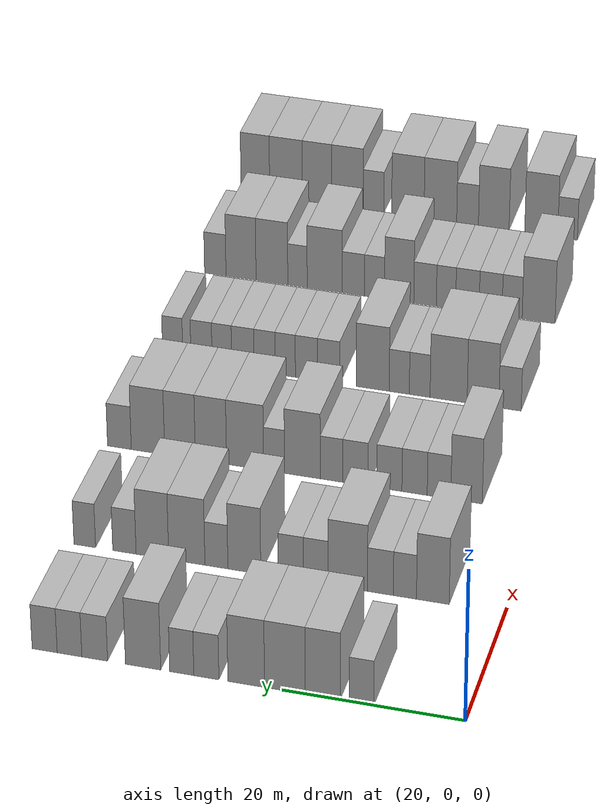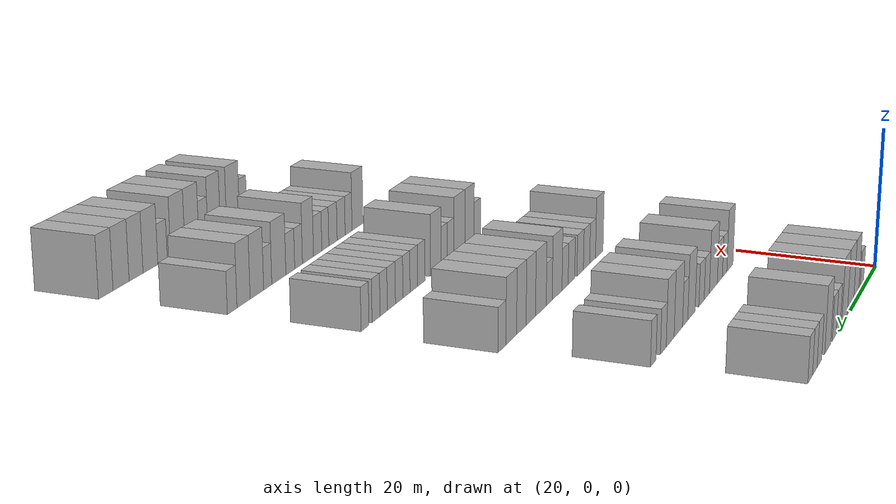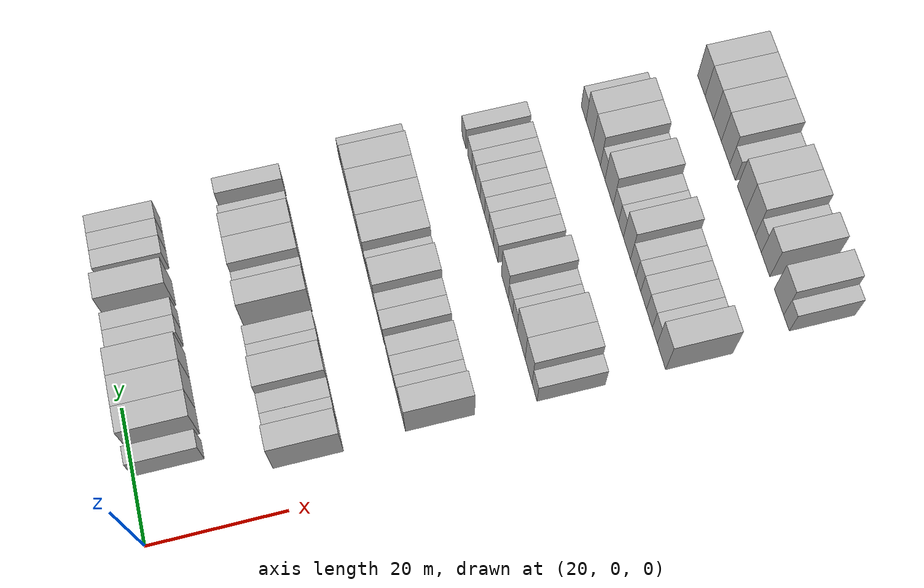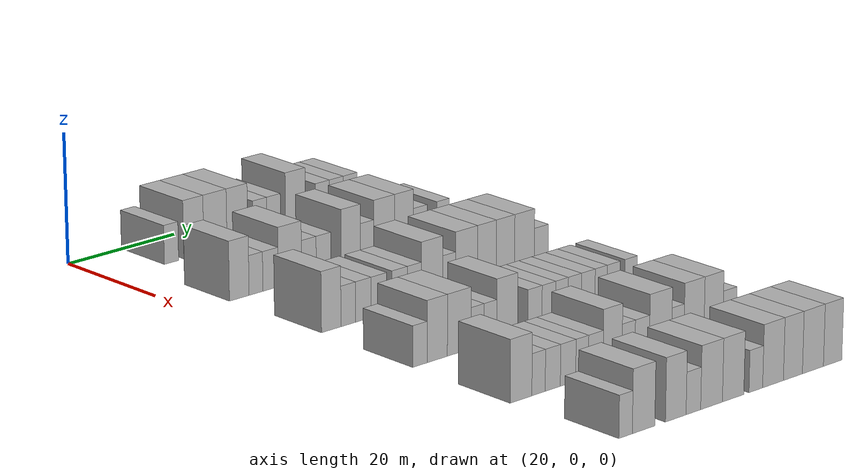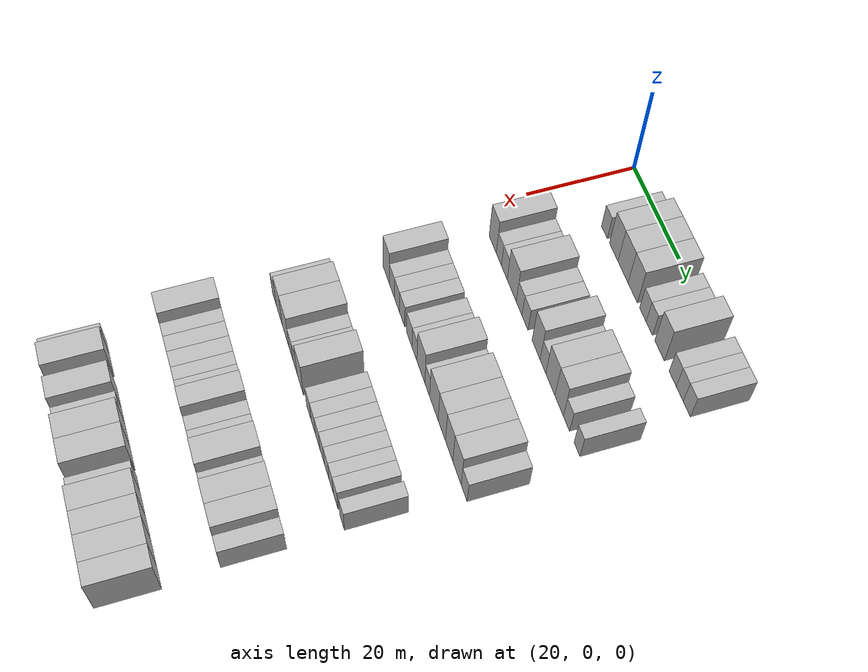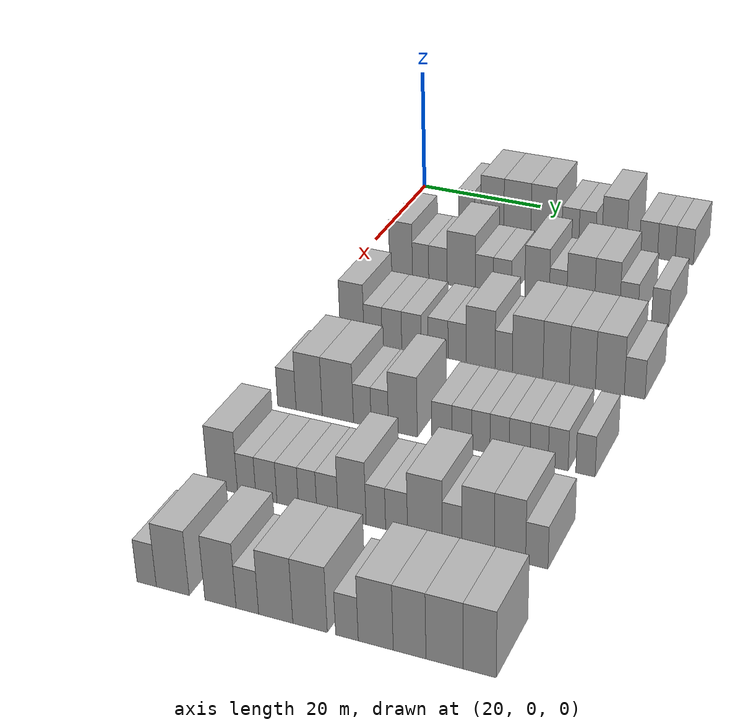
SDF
<sdf version="1.6">
 <world name="default">
  <model name="building_86">
   <static>1</static>
   <pose>25.0000 11.2939 0 0.000000 0.000000 0.000000</pose>
   <link name="link">
    <pose>0 0 3.00 0 0 0</pose>
    <collision name="collision"><geometry><box><size>10.0000 2.6943 6.0000</size></box></geometry></collision>
    <visual name="visual">
     <cast_shadows>0</cast_shadows>
     <geometry><box><size>10.0000 2.6943 6.0000</size></box></geometry>
     <material>
      <script>
       <uri>model://HANNAS_wall/materials/scripts</uri>
       <uri>model://HANNAS_wall/materials/textures</uri>
       <name>vrc/HANNAS_wall</name>
      </script>
     </material>
    </visual>
   </link>
  </model>
  <model name="building_87">
   <static>1</static>
   <pose>25.0000 15.5551 0 0.000000 0.000000 0.000000</pose>
   <link name="link">
    <pose>0 0 4.50 0 0 0</pose>
    <collision name="collision"><geometry><box><size>10.0000 3.8279 9.0000</size></box></geometry></collision>
    <visual name="visual">
     <cast_shadows>0</cast_shadows>
     <geometry><box><size>10.0000 3.8279 9.0000</size></box></geometry>
     <material>
      <script>
       <uri>model://HANNAS_wall/materials/scripts</uri>
       <uri>model://HANNAS_wall/materials/textures</uri>
       <name>vrc/HANNAS_wall</name>
      </script>
     </material>
    </visual>
   </link>
  </model>
  <model name="building_88">
   <static>1</static>
   <pose>25.0000 19.7110 0 0.000000 0.000000 0.000000</pose>
   <link name="link">
    <pose>0 0 4.50 0 0 0</pose>
    <collision name="collision"><geometry><box><size>10.0000 4.4839 9.0000</size></box></geometry></collision>
    <visual name="visual">
     <cast_shadows>0</cast_shadows>
     <geometry><box><size>10.0000 4.4839 9.0000</size></box></geometry>
     <material>
      <script>
       <uri>model://HANNAS_wall/materials/scripts</uri>
       <uri>model://HANNAS_wall/materials/textures</uri>
       <name>vrc/HANNAS_wall</name>
      </script>
     </material>
    </visual>
   </link>
  </model>
  <model name="building_89">
   <static>1</static>
   <pose>25.0000 23.9809 0 0.000000 0.000000 0.000000</pose>
   <link name="link">
    <pose>0 0 4.50 0 0 0</pose>
    <collision name="collision"><geometry><box><size>10.0000 4.0560 9.0000</size></box></geometry></collision>
    <visual name="visual">
     <cast_shadows>0</cast_shadows>
     <geometry><box><size>10.0000 4.0560 9.0000</size></box></geometry>
     <material>
      <script>
       <uri>model://HANNAS_wall/materials/scripts</uri>
       <uri>model://HANNAS_wall/materials/textures</uri>
       <name>vrc/HANNAS_wall</name>
      </script>
     </material>
    </visual>
   </link>
  </model>
  <model name="building_90">
   <static>1</static>
   <pose>25.0000 28.4050 0 0.000000 0.000000 0.000000</pose>
   <link name="link">
    <pose>0 0 3.00 0 0 0</pose>
    <collision name="collision"><geometry><box><size>10.0000 2.7922 6.0000</size></box></geometry></collision>
    <visual name="visual">
     <cast_shadows>0</cast_shadows>
     <geometry><box><size>10.0000 2.7922 6.0000</size></box></geometry>
     <material>
      <script>
       <uri>model://HANNAS_wall/materials/scripts</uri>
       <uri>model://HANNAS_wall/materials/textures</uri>
       <name>vrc/HANNAS_wall</name>
      </script>
     </material>
    </visual>
   </link>
  </model>
  <model name="building_91">
   <static>1</static>
   <pose>25.0000 31.1441 0 0.000000 0.000000 0.000000</pose>
   <link name="link">
    <pose>0 0 3.00 0 0 0</pose>
    <collision name="collision"><geometry><box><size>10.0000 2.6859 6.0000</size></box></geometry></collision>
    <visual name="visual">
     <cast_shadows>0</cast_shadows>
     <geometry><box><size>10.0000 2.6859 6.0000</size></box></geometry>
     <material>
      <script>
       <uri>model://HANNAS_wall/materials/scripts</uri>
       <uri>model://HANNAS_wall/materials/textures</uri>
       <name>vrc/HANNAS_wall</name>
      </script>
     </material>
    </visual>
   </link>
  </model>
  <model name="building_92">
   <static>1</static>
   <pose>25.0000 35.4625 0 0.000000 0.000000 0.000000</pose>
   <link name="link">
    <pose>0 0 4.50 0 0 0</pose>
    <collision name="collision"><geometry><box><size>10.0000 3.9509 9.0000</size></box></geometry></collision>
    <visual name="visual">
     <cast_shadows>0</cast_shadows>
     <geometry><box><size>10.0000 3.9509 9.0000</size></box></geometry>
     <material>
      <script>
       <uri>model://HANNAS_wall/materials/scripts</uri>
       <uri>model://HANNAS_wall/materials/textures</uri>
       <name>vrc/HANNAS_wall</name>
      </script>
     </material>
    </visual>
   </link>
  </model>
  <model name="building_93">
   <static>1</static>
   <pose>25.0000 40.8874 0 0.000000 0.000000 0.000000</pose>
   <link name="link">
    <pose>0 0 3.00 0 0 0</pose>
    <collision name="collision"><geometry><box><size>10.0000 2.8988 6.0000</size></box></geometry></collision>
    <visual name="visual">
     <cast_shadows>0</cast_shadows>
     <geometry><box><size>10.0000 2.8988 6.0000</size></box></geometry>
     <material>
      <script>
       <uri>model://HANNAS_wall/materials/scripts</uri>
       <uri>model://HANNAS_wall/materials/textures</uri>
       <name>vrc/HANNAS_wall</name>
      </script>
     </material>
    </visual>
   </link>
  </model>
  <model name="building_94">
   <static>1</static>
   <pose>25.0000 43.7271 0 0.000000 0.000000 0.000000</pose>
   <link name="link">
    <pose>0 0 3.00 0 0 0</pose>
    <collision name="collision"><geometry><box><size>10.0000 2.7806 6.0000</size></box></geometry></collision>
    <visual name="visual">
     <cast_shadows>0</cast_shadows>
     <geometry><box><size>10.0000 2.7806 6.0000</size></box></geometry>
     <material>
      <script>
       <uri>model://HANNAS_wall/materials/scripts</uri>
       <uri>model://HANNAS_wall/materials/textures</uri>
       <name>vrc/HANNAS_wall</name>
      </script>
     </material>
    </visual>
   </link>
  </model>
  <model name="building_95">
   <static>1</static>
   <pose>25.0000 46.5341 0 0.000000 0.000000 0.000000</pose>
   <link name="link">
    <pose>0 0 3.00 0 0 0</pose>
    <collision name="collision"><geometry><box><size>10.0000 2.8335 6.0000</size></box></geometry></collision>
    <visual name="visual">
     <cast_shadows>0</cast_shadows>
     <geometry><box><size>10.0000 2.8335 6.0000</size></box></geometry>
     <material>
      <script>
       <uri>model://HANNAS_wall/materials/scripts</uri>
       <uri>model://HANNAS_wall/materials/textures</uri>
       <name>vrc/HANNAS_wall</name>
      </script>
     </material>
    </visual>
   </link>
  </model>
  <model name="building_270">
   <static>1</static>
   <pose>44.0000 8.1448 0 0.000000 0.000000 0.000000</pose>
   <link name="link">
    <pose>0 0 4.50 0 0 0</pose>
    <collision name="collision"><geometry><box><size>10.0000 3.6847 9.0000</size></box></geometry></collision>
    <visual name="visual">
     <cast_shadows>0</cast_shadows>
     <geometry><box><size>10.0000 3.6847 9.0000</size></box></geometry>
     <material>
      <script>
       <uri>model://HANNAS_wall/materials/scripts</uri>
       <uri>model://HANNAS_wall/materials/textures</uri>
       <name>vrc/HANNAS_wall</name>
      </script>
     </material>
    </visual>
   </link>
  </model>
  <model name="building_271">
   <static>1</static>
   <pose>44.0000 11.2931 0 0.000000 0.000000 0.000000</pose>
   <link name="link">
    <pose>0 0 3.00 0 0 0</pose>
    <collision name="collision"><geometry><box><size>10.0000 2.6119 6.0000</size></box></geometry></collision>
    <visual name="visual">
     <cast_shadows>0</cast_shadows>
     <geometry><box><size>10.0000 2.6119 6.0000</size></box></geometry>
     <material>
      <script>
       <uri>model://HANNAS_wall/materials/scripts</uri>
       <uri>model://HANNAS_wall/materials/textures</uri>
       <name>vrc/HANNAS_wall</name>
      </script>
     </material>
    </visual>
   </link>
  </model>
  <model name="building_272">
   <static>1</static>
   <pose>44.0000 14.0636 0 0.000000 0.000000 0.000000</pose>
   <link name="link">
    <pose>0 0 3.00 0 0 0</pose>
    <collision name="collision"><geometry><box><size>10.0000 2.9292 6.0000</size></box></geometry></collision>
    <visual name="visual">
     <cast_shadows>0</cast_shadows>
     <geometry><box><size>10.0000 2.9292 6.0000</size></box></geometry>
     <material>
      <script>
       <uri>model://HANNAS_wall/materials/scripts</uri>
       <uri>model://HANNAS_wall/materials/textures</uri>
       <name>vrc/HANNAS_wall</name>
      </script>
     </material>
    </visual>
   </link>
  </model>
  <model name="building_273">
   <static>1</static>
   <pose>44.0000 17.7617 0 0.000000 0.000000 0.000000</pose>
   <link name="link">
    <pose>0 0 4.50 0 0 0</pose>
    <collision name="collision"><geometry><box><size>10.0000 4.4670 9.0000</size></box></geometry></collision>
    <visual name="visual">
     <cast_shadows>0</cast_shadows>
     <geometry><box><size>10.0000 4.4670 9.0000</size></box></geometry>
     <material>
      <script>
       <uri>model://HANNAS_wall/materials/scripts</uri>
       <uri>model://HANNAS_wall/materials/textures</uri>
       <name>vrc/HANNAS_wall</name>
      </script>
     </material>
    </visual>
   </link>
  </model>
  <model name="building_274">
   <static>1</static>
   <pose>44.0000 21.4152 0 0.000000 0.000000 0.000000</pose>
   <link name="link">
    <pose>0 0 3.00 0 0 0</pose>
    <collision name="collision"><geometry><box><size>10.0000 2.8399 6.0000</size></box></geometry></collision>
    <visual name="visual">
     <cast_shadows>0</cast_shadows>
     <geometry><box><size>10.0000 2.8399 6.0000</size></box></geometry>
     <material>
      <script>
       <uri>model://HANNAS_wall/materials/scripts</uri>
       <uri>model://HANNAS_wall/materials/textures</uri>
       <name>vrc/HANNAS_wall</name>
      </script>
     </material>
    </visual>
   </link>
  </model>
  <model name="building_275">
   <static>1</static>
   <pose>44.0000 24.2639 0 0.000000 0.000000 0.000000</pose>
   <link name="link">
    <pose>0 0 3.00 0 0 0</pose>
    <collision name="collision"><geometry><box><size>10.0000 2.8575 6.0000</size></box></geometry></collision>
    <visual name="visual">
     <cast_shadows>0</cast_shadows>
     <geometry><box><size>10.0000 2.8575 6.0000</size></box></geometry>
     <material>
      <script>
       <uri>model://HANNAS_wall/materials/scripts</uri>
       <uri>model://HANNAS_wall/materials/textures</uri>
       <name>vrc/HANNAS_wall</name>
      </script>
     </material>
    </visual>
   </link>
  </model>
  <model name="building_276">
   <static>1</static>
   <pose>44.0000 29.5811 0 0.000000 0.000000 0.000000</pose>
   <link name="link">
    <pose>0 0 4.50 0 0 0</pose>
    <collision name="collision"><geometry><box><size>10.0000 3.7770 9.0000</size></box></geometry></collision>
    <visual name="visual">
     <cast_shadows>0</cast_shadows>
     <geometry><box><size>10.0000 3.7770 9.0000</size></box></geometry>
     <material>
      <script>
       <uri>model://HANNAS_wall/materials/scripts</uri>
       <uri>model://HANNAS_wall/materials/textures</uri>
       <name>vrc/HANNAS_wall</name>
      </script>
     </material>
    </visual>
   </link>
  </model>
  <model name="building_277">
   <static>1</static>
   <pose>44.0000 32.7936 0 0.000000 0.000000 0.000000</pose>
   <link name="link">
    <pose>0 0 3.00 0 0 0</pose>
    <collision name="collision"><geometry><box><size>10.0000 2.6480 6.0000</size></box></geometry></collision>
    <visual name="visual">
     <cast_shadows>0</cast_shadows>
     <geometry><box><size>10.0000 2.6480 6.0000</size></box></geometry>
     <material>
      <script>
       <uri>model://HANNAS_wall/materials/scripts</uri>
       <uri>model://HANNAS_wall/materials/textures</uri>
       <name>vrc/HANNAS_wall</name>
      </script>
     </material>
    </visual>
   </link>
  </model>
  <model name="building_278">
   <static>1</static>
   <pose>44.0000 36.2102 0 0.000000 0.000000 0.000000</pose>
   <link name="link">
    <pose>0 0 4.50 0 0 0</pose>
    <collision name="collision"><geometry><box><size>10.0000 4.1853 9.0000</size></box></geometry></collision>
    <visual name="visual">
     <cast_shadows>0</cast_shadows>
     <geometry><box><size>10.0000 4.1853 9.0000</size></box></geometry>
     <material>
      <script>
       <uri>model://HANNAS_wall/materials/scripts</uri>
       <uri>model://HANNAS_wall/materials/textures</uri>
       <name>vrc/HANNAS_wall</name>
      </script>
     </material>
    </visual>
   </link>
  </model>
  <model name="building_279">
   <static>1</static>
   <pose>44.0000 40.1960 0 0.000000 0.000000 0.000000</pose>
   <link name="link">
    <pose>0 0 4.50 0 0 0</pose>
    <collision name="collision"><geometry><box><size>10.0000 3.7861 9.0000</size></box></geometry></collision>
    <visual name="visual">
     <cast_shadows>0</cast_shadows>
     <geometry><box><size>10.0000 3.7861 9.0000</size></box></geometry>
     <material>
      <script>
       <uri>model://HANNAS_wall/materials/scripts</uri>
       <uri>model://HANNAS_wall/materials/textures</uri>
       <name>vrc/HANNAS_wall</name>
      </script>
     </material>
    </visual>
   </link>
  </model>
  <model name="building_280">
   <static>1</static>
   <pose>44.0000 43.4477 0 0.000000 0.000000 0.000000</pose>
   <link name="link">
    <pose>0 0 3.00 0 0 0</pose>
    <collision name="collision"><geometry><box><size>10.0000 2.7173 6.0000</size></box></geometry></collision>
    <visual name="visual">
     <cast_shadows>0</cast_shadows>
     <geometry><box><size>10.0000 2.7173 6.0000</size></box></geometry>
     <material>
      <script>
       <uri>model://HANNAS_wall/materials/scripts</uri>
       <uri>model://HANNAS_wall/materials/textures</uri>
       <name>vrc/HANNAS_wall</name>
      </script>
     </material>
    </visual>
   </link>
  </model>
  <model name="building_281">
   <static>1</static>
   <pose>44.0000 48.0725 0 0.000000 0.000000 0.000000</pose>
   <link name="link">
    <pose>0 0 3.00 0 0 0</pose>
    <collision name="collision"><geometry><box><size>10.0000 2.5323 6.0000</size></box></geometry></collision>
    <visual name="visual">
     <cast_shadows>0</cast_shadows>
     <geometry><box><size>10.0000 2.5323 6.0000</size></box></geometry>
     <material>
      <script>
       <uri>model://HANNAS_wall/materials/scripts</uri>
       <uri>model://HANNAS_wall/materials/textures</uri>
       <name>vrc/HANNAS_wall</name>
      </script>
     </material>
    </visual>
   </link>
  </model>
  <model name="building_431">
   <static>1</static>
   <pose>63.0000 8.8185 0 0.000000 0.000000 0.000000</pose>
   <link name="link">
    <pose>0 0 4.50 0 0 0</pose>
    <collision name="collision"><geometry><box><size>10.0000 3.6568 9.0000</size></box></geometry></collision>
    <visual name="visual">
     <cast_shadows>0</cast_shadows>
     <geometry><box><size>10.0000 3.6568 9.0000</size></box></geometry>
     <material>
      <script>
       <uri>model://HANNAS_wall/materials/scripts</uri>
       <uri>model://HANNAS_wall/materials/textures</uri>
       <name>vrc/HANNAS_wall</name>
      </script>
     </material>
    </visual>
   </link>
  </model>
  <model name="building_432">
   <static>1</static>
   <pose>63.0000 12.0257 0 0.000000 0.000000 0.000000</pose>
   <link name="link">
    <pose>0 0 3.00 0 0 0</pose>
    <collision name="collision"><geometry><box><size>10.0000 2.7575 6.0000</size></box></geometry></collision>
    <visual name="visual">
     <cast_shadows>0</cast_shadows>
     <geometry><box><size>10.0000 2.7575 6.0000</size></box></geometry>
     <material>
      <script>
       <uri>model://HANNAS_wall/materials/scripts</uri>
       <uri>model://HANNAS_wall/materials/textures</uri>
       <name>vrc/HANNAS_wall</name>
      </script>
     </material>
    </visual>
   </link>
  </model>
  <model name="building_433">
   <static>1</static>
   <pose>63.0000 14.8827 0 0.000000 0.000000 0.000000</pose>
   <link name="link">
    <pose>0 0 3.00 0 0 0</pose>
    <collision name="collision"><geometry><box><size>10.0000 2.9565 6.0000</size></box></geometry></collision>
    <visual name="visual">
     <cast_shadows>0</cast_shadows>
     <geometry><box><size>10.0000 2.9565 6.0000</size></box></geometry>
     <material>
      <script>
       <uri>model://HANNAS_wall/materials/scripts</uri>
       <uri>model://HANNAS_wall/materials/textures</uri>
       <name>vrc/HANNAS_wall</name>
      </script>
     </material>
    </visual>
   </link>
  </model>
  <model name="building_434">
   <static>1</static>
   <pose>63.0000 17.8449 0 0.000000 0.000000 0.000000</pose>
   <link name="link">
    <pose>0 0 3.00 0 0 0</pose>
    <collision name="collision"><geometry><box><size>10.0000 2.9678 6.0000</size></box></geometry></collision>
    <visual name="visual">
     <cast_shadows>0</cast_shadows>
     <geometry><box><size>10.0000 2.9678 6.0000</size></box></geometry>
     <material>
      <script>
       <uri>model://HANNAS_wall/materials/scripts</uri>
       <uri>model://HANNAS_wall/materials/textures</uri>
       <name>vrc/HANNAS_wall</name>
      </script>
     </material>
    </visual>
   </link>
  </model>
  <model name="building_435">
   <static>1</static>
   <pose>63.0000 21.8073 0 0.000000 0.000000 0.000000</pose>
   <link name="link">
    <pose>0 0 3.00 0 0 0</pose>
    <collision name="collision"><geometry><box><size>10.0000 2.9570 6.0000</size></box></geometry></collision>
    <visual name="visual">
     <cast_shadows>0</cast_shadows>
     <geometry><box><size>10.0000 2.9570 6.0000</size></box></geometry>
     <material>
      <script>
       <uri>model://HANNAS_wall/materials/scripts</uri>
       <uri>model://HANNAS_wall/materials/textures</uri>
       <name>vrc/HANNAS_wall</name>
      </script>
     </material>
    </visual>
   </link>
  </model>
  <model name="building_436">
   <static>1</static>
   <pose>63.0000 24.6280 0 0.000000 0.000000 0.000000</pose>
   <link name="link">
    <pose>0 0 3.00 0 0 0</pose>
    <collision name="collision"><geometry><box><size>10.0000 2.6844 6.0000</size></box></geometry></collision>
    <visual name="visual">
     <cast_shadows>0</cast_shadows>
     <geometry><box><size>10.0000 2.6844 6.0000</size></box></geometry>
     <material>
      <script>
       <uri>model://HANNAS_wall/materials/scripts</uri>
       <uri>model://HANNAS_wall/materials/textures</uri>
       <name>vrc/HANNAS_wall</name>
      </script>
     </material>
    </visual>
   </link>
  </model>
  <model name="building_437">
   <static>1</static>
   <pose>63.0000 28.0802 0 0.000000 0.000000 0.000000</pose>
   <link name="link">
    <pose>0 0 4.50 0 0 0</pose>
    <collision name="collision"><geometry><box><size>10.0000 4.2200 9.0000</size></box></geometry></collision>
    <visual name="visual">
     <cast_shadows>0</cast_shadows>
     <geometry><box><size>10.0000 4.2200 9.0000</size></box></geometry>
     <material>
      <script>
       <uri>model://HANNAS_wall/materials/scripts</uri>
       <uri>model://HANNAS_wall/materials/textures</uri>
       <name>vrc/HANNAS_wall</name>
      </script>
     </material>
    </visual>
   </link>
  </model>
  <model name="building_438">
   <static>1</static>
   <pose>63.0000 31.4315 0 0.000000 0.000000 0.000000</pose>
   <link name="link">
    <pose>0 0 3.00 0 0 0</pose>
    <collision name="collision"><geometry><box><size>10.0000 2.4826 6.0000</size></box></geometry></collision>
    <visual name="visual">
     <cast_shadows>0</cast_shadows>
     <geometry><box><size>10.0000 2.4826 6.0000</size></box></geometry>
     <material>
      <script>
       <uri>model://HANNAS_wall/materials/scripts</uri>
       <uri>model://HANNAS_wall/materials/textures</uri>
       <name>vrc/HANNAS_wall</name>
      </script>
     </material>
    </visual>
   </link>
  </model>
  <model name="building_439">
   <static>1</static>
   <pose>63.0000 34.8760 0 0.000000 0.000000 0.000000</pose>
   <link name="link">
    <pose>0 0 4.50 0 0 0</pose>
    <collision name="collision"><geometry><box><size>10.0000 4.4065 9.0000</size></box></geometry></collision>
    <visual name="visual">
     <cast_shadows>0</cast_shadows>
     <geometry><box><size>10.0000 4.4065 9.0000</size></box></geometry>
     <material>
      <script>
       <uri>model://HANNAS_wall/materials/scripts</uri>
       <uri>model://HANNAS_wall/materials/textures</uri>
       <name>vrc/HANNAS_wall</name>
      </script>
     </material>
    </visual>
   </link>
  </model>
  <model name="building_440">
   <static>1</static>
   <pose>63.0000 38.9473 0 0.000000 0.000000 0.000000</pose>
   <link name="link">
    <pose>0 0 4.50 0 0 0</pose>
    <collision name="collision"><geometry><box><size>10.0000 3.7361 9.0000</size></box></geometry></collision>
    <visual name="visual">
     <cast_shadows>0</cast_shadows>
     <geometry><box><size>10.0000 3.7361 9.0000</size></box></geometry>
     <material>
      <script>
       <uri>model://HANNAS_wall/materials/scripts</uri>
       <uri>model://HANNAS_wall/materials/textures</uri>
       <name>vrc/HANNAS_wall</name>
      </script>
     </material>
    </visual>
   </link>
  </model>
  <model name="building_441">
   <static>1</static>
   <pose>63.0000 42.6548 0 0.000000 0.000000 0.000000</pose>
   <link name="link">
    <pose>0 0 4.50 0 0 0</pose>
    <collision name="collision"><geometry><box><size>10.0000 3.6789 9.0000</size></box></geometry></collision>
    <visual name="visual">
     <cast_shadows>0</cast_shadows>
     <geometry><box><size>10.0000 3.6789 9.0000</size></box></geometry>
     <material>
      <script>
       <uri>model://HANNAS_wall/materials/scripts</uri>
       <uri>model://HANNAS_wall/materials/textures</uri>
       <name>vrc/HANNAS_wall</name>
      </script>
     </material>
    </visual>
   </link>
  </model>
  <model name="building_442">
   <static>1</static>
   <pose>63.0000 46.5046 0 0.000000 0.000000 0.000000</pose>
   <link name="link">
    <pose>0 0 4.50 0 0 0</pose>
    <collision name="collision"><geometry><box><size>10.0000 4.0207 9.0000</size></box></geometry></collision>
    <visual name="visual">
     <cast_shadows>0</cast_shadows>
     <geometry><box><size>10.0000 4.0207 9.0000</size></box></geometry>
     <material>
      <script>
       <uri>model://HANNAS_wall/materials/scripts</uri>
       <uri>model://HANNAS_wall/materials/textures</uri>
       <name>vrc/HANNAS_wall</name>
      </script>
     </material>
    </visual>
   </link>
  </model>
  <model name="building_443">
   <static>1</static>
   <pose>63.0000 49.9471 0 0.000000 0.000000 0.000000</pose>
   <link name="link">
    <pose>0 0 3.00 0 0 0</pose>
    <collision name="collision"><geometry><box><size>10.0000 2.8644 6.0000</size></box></geometry></collision>
    <visual name="visual">
     <cast_shadows>0</cast_shadows>
     <geometry><box><size>10.0000 2.8644 6.0000</size></box></geometry>
     <material>
      <script>
       <uri>model://HANNAS_wall/materials/scripts</uri>
       <uri>model://HANNAS_wall/materials/textures</uri>
       <name>vrc/HANNAS_wall</name>
      </script>
     </material>
    </visual>
   </link>
  </model>
  <model name="building_610">
   <static>1</static>
   <pose>82.0000 8.0719 0 0.000000 0.000000 0.000000</pose>
   <link name="link">
    <pose>0 0 3.00 0 0 0</pose>
    <collision name="collision"><geometry><box><size>10.0000 2.6813 6.0000</size></box></geometry></collision>
    <visual name="visual">
     <cast_shadows>0</cast_shadows>
     <geometry><box><size>10.0000 2.6813 6.0000</size></box></geometry>
     <material>
      <script>
       <uri>model://HANNAS_wall/materials/scripts</uri>
       <uri>model://HANNAS_wall/materials/textures</uri>
       <name>vrc/HANNAS_wall</name>
      </script>
     </material>
    </visual>
   </link>
  </model>
  <model name="building_611">
   <static>1</static>
   <pose>82.0000 11.3133 0 0.000000 0.000000 0.000000</pose>
   <link name="link">
    <pose>0 0 4.50 0 0 0</pose>
    <collision name="collision"><geometry><box><size>10.0000 3.8016 9.0000</size></box></geometry></collision>
    <visual name="visual">
     <cast_shadows>0</cast_shadows>
     <geometry><box><size>10.0000 3.8016 9.0000</size></box></geometry>
     <material>
      <script>
       <uri>model://HANNAS_wall/materials/scripts</uri>
       <uri>model://HANNAS_wall/materials/textures</uri>
       <name>vrc/HANNAS_wall</name>
      </script>
     </material>
    </visual>
   </link>
  </model>
  <model name="building_612">
   <static>1</static>
   <pose>82.0000 15.4498 0 0.000000 0.000000 0.000000</pose>
   <link name="link">
    <pose>0 0 4.50 0 0 0</pose>
    <collision name="collision"><geometry><box><size>10.0000 4.4713 9.0000</size></box></geometry></collision>
    <visual name="visual">
     <cast_shadows>0</cast_shadows>
     <geometry><box><size>10.0000 4.4713 9.0000</size></box></geometry>
     <material>
      <script>
       <uri>model://HANNAS_wall/materials/scripts</uri>
       <uri>model://HANNAS_wall/materials/textures</uri>
       <name>vrc/HANNAS_wall</name>
      </script>
     </material>
    </visual>
   </link>
  </model>
  <model name="building_613">
   <static>1</static>
   <pose>82.0000 18.9383 0 0.000000 0.000000 0.000000</pose>
   <link name="link">
    <pose>0 0 3.00 0 0 0</pose>
    <collision name="collision"><geometry><box><size>10.0000 2.5058 6.0000</size></box></geometry></collision>
    <visual name="visual">
     <cast_shadows>0</cast_shadows>
     <geometry><box><size>10.0000 2.5058 6.0000</size></box></geometry>
     <material>
      <script>
       <uri>model://HANNAS_wall/materials/scripts</uri>
       <uri>model://HANNAS_wall/materials/textures</uri>
       <name>vrc/HANNAS_wall</name>
      </script>
     </material>
    </visual>
   </link>
  </model>
  <model name="building_614">
   <static>1</static>
   <pose>82.0000 21.4114 0 0.000000 0.000000 0.000000</pose>
   <link name="link">
    <pose>0 0 3.00 0 0 0</pose>
    <collision name="collision"><geometry><box><size>10.0000 2.4405 6.0000</size></box></geometry></collision>
    <visual name="visual">
     <cast_shadows>0</cast_shadows>
     <geometry><box><size>10.0000 2.4405 6.0000</size></box></geometry>
     <material>
      <script>
       <uri>model://HANNAS_wall/materials/scripts</uri>
       <uri>model://HANNAS_wall/materials/textures</uri>
       <name>vrc/HANNAS_wall</name>
      </script>
     </material>
    </visual>
   </link>
  </model>
  <model name="building_615">
   <static>1</static>
   <pose>82.0000 24.6415 0 0.000000 0.000000 0.000000</pose>
   <link name="link">
    <pose>0 0 4.50 0 0 0</pose>
    <collision name="collision"><geometry><box><size>10.0000 4.0196 9.0000</size></box></geometry></collision>
    <visual name="visual">
     <cast_shadows>0</cast_shadows>
     <geometry><box><size>10.0000 4.0196 9.0000</size></box></geometry>
     <material>
      <script>
       <uri>model://HANNAS_wall/materials/scripts</uri>
       <uri>model://HANNAS_wall/materials/textures</uri>
       <name>vrc/HANNAS_wall</name>
      </script>
     </material>
    </visual>
   </link>
  </model>
  <model name="building_616">
   <static>1</static>
   <pose>82.0000 30.0239 0 0.000000 0.000000 0.000000</pose>
   <link name="link">
    <pose>0 0 3.00 0 0 0</pose>
    <collision name="collision"><geometry><box><size>10.0000 2.7454 6.0000</size></box></geometry></collision>
    <visual name="visual">
     <cast_shadows>0</cast_shadows>
     <geometry><box><size>10.0000 2.7454 6.0000</size></box></geometry>
     <material>
      <script>
       <uri>model://HANNAS_wall/materials/scripts</uri>
       <uri>model://HANNAS_wall/materials/textures</uri>
       <name>vrc/HANNAS_wall</name>
      </script>
     </material>
    </visual>
   </link>
  </model>
  <model name="building_617">
   <static>1</static>
   <pose>82.0000 32.7380 0 0.000000 0.000000 0.000000</pose>
   <link name="link">
    <pose>0 0 3.00 0 0 0</pose>
    <collision name="collision"><geometry><box><size>10.0000 2.6828 6.0000</size></box></geometry></collision>
    <visual name="visual">
     <cast_shadows>0</cast_shadows>
     <geometry><box><size>10.0000 2.6828 6.0000</size></box></geometry>
     <material>
      <script>
       <uri>model://HANNAS_wall/materials/scripts</uri>
       <uri>model://HANNAS_wall/materials/textures</uri>
       <name>vrc/HANNAS_wall</name>
      </script>
     </material>
    </visual>
   </link>
  </model>
  <model name="building_618">
   <static>1</static>
   <pose>82.0000 35.3207 0 0.000000 0.000000 0.000000</pose>
   <link name="link">
    <pose>0 0 3.00 0 0 0</pose>
    <collision name="collision"><geometry><box><size>10.0000 2.4826 6.0000</size></box></geometry></collision>
    <visual name="visual">
     <cast_shadows>0</cast_shadows>
     <geometry><box><size>10.0000 2.4826 6.0000</size></box></geometry>
     <material>
      <script>
       <uri>model://HANNAS_wall/materials/scripts</uri>
       <uri>model://HANNAS_wall/materials/textures</uri>
       <name>vrc/HANNAS_wall</name>
      </script>
     </material>
    </visual>
   </link>
  </model>
  <model name="building_619">
   <static>1</static>
   <pose>82.0000 37.8633 0 0.000000 0.000000 0.000000</pose>
   <link name="link">
    <pose>0 0 3.00 0 0 0</pose>
    <collision name="collision"><geometry><box><size>10.0000 2.6026 6.0000</size></box></geometry></collision>
    <visual name="visual">
     <cast_shadows>0</cast_shadows>
     <geometry><box><size>10.0000 2.6026 6.0000</size></box></geometry>
     <material>
      <script>
       <uri>model://HANNAS_wall/materials/scripts</uri>
       <uri>model://HANNAS_wall/materials/textures</uri>
       <name>vrc/HANNAS_wall</name>
      </script>
     </material>
    </visual>
   </link>
  </model>
  <model name="building_620">
   <static>1</static>
   <pose>82.0000 40.5405 0 0.000000 0.000000 0.000000</pose>
   <link name="link">
    <pose>0 0 3.00 0 0 0</pose>
    <collision name="collision"><geometry><box><size>10.0000 2.7518 6.0000</size></box></geometry></collision>
    <visual name="visual">
     <cast_shadows>0</cast_shadows>
     <geometry><box><size>10.0000 2.7518 6.0000</size></box></geometry>
     <material>
      <script>
       <uri>model://HANNAS_wall/materials/scripts</uri>
       <uri>model://HANNAS_wall/materials/textures</uri>
       <name>vrc/HANNAS_wall</name>
      </script>
     </material>
    </visual>
   </link>
  </model>
  <model name="building_621">
   <static>1</static>
   <pose>82.0000 43.1241 0 0.000000 0.000000 0.000000</pose>
   <link name="link">
    <pose>0 0 3.00 0 0 0</pose>
    <collision name="collision"><geometry><box><size>10.0000 2.4154 6.0000</size></box></geometry></collision>
    <visual name="visual">
     <cast_shadows>0</cast_shadows>
     <geometry><box><size>10.0000 2.4154 6.0000</size></box></geometry>
     <material>
      <script>
       <uri>model://HANNAS_wall/materials/scripts</uri>
       <uri>model://HANNAS_wall/materials/textures</uri>
       <name>vrc/HANNAS_wall</name>
      </script>
     </material>
    </visual>
   </link>
  </model>
  <model name="building_622">
   <static>1</static>
   <pose>82.0000 45.6432 0 0.000000 0.000000 0.000000</pose>
   <link name="link">
    <pose>0 0 3.00 0 0 0</pose>
    <collision name="collision"><geometry><box><size>10.0000 2.6229 6.0000</size></box></geometry></collision>
    <visual name="visual">
     <cast_shadows>0</cast_shadows>
     <geometry><box><size>10.0000 2.6229 6.0000</size></box></geometry>
     <material>
      <script>
       <uri>model://HANNAS_wall/materials/scripts</uri>
       <uri>model://HANNAS_wall/materials/textures</uri>
       <name>vrc/HANNAS_wall</name>
      </script>
     </material>
    </visual>
   </link>
  </model>
  <model name="building_623">
   <static>1</static>
   <pose>82.0000 49.2082 0 0.000000 0.000000 0.000000</pose>
   <link name="link">
    <pose>0 0 3.00 0 0 0</pose>
    <collision name="collision"><geometry><box><size>10.0000 2.5071 6.0000</size></box></geometry></collision>
    <visual name="visual">
     <cast_shadows>0</cast_shadows>
     <geometry><box><size>10.0000 2.5071 6.0000</size></box></geometry>
     <material>
      <script>
       <uri>model://HANNAS_wall/materials/scripts</uri>
       <uri>model://HANNAS_wall/materials/textures</uri>
       <name>vrc/HANNAS_wall</name>
      </script>
     </material>
    </visual>
   </link>
  </model>
  <model name="building_787">
   <static>1</static>
   <pose>101.0000 8.8187 0 0.000000 0.000000 0.000000</pose>
   <link name="link">
    <pose>0 0 4.50 0 0 0</pose>
    <collision name="collision"><geometry><box><size>10.0000 4.0529 9.0000</size></box></geometry></collision>
    <visual name="visual">
     <cast_shadows>0</cast_shadows>
     <geometry><box><size>10.0000 4.0529 9.0000</size></box></geometry>
     <material>
      <script>
       <uri>model://HANNAS_wall/materials/scripts</uri>
       <uri>model://HANNAS_wall/materials/textures</uri>
       <name>vrc/HANNAS_wall</name>
      </script>
     </material>
    </visual>
   </link>
  </model>
  <model name="building_788">
   <static>1</static>
   <pose>101.0000 12.0931 0 0.000000 0.000000 0.000000</pose>
   <link name="link">
    <pose>0 0 3.00 0 0 0</pose>
    <collision name="collision"><geometry><box><size>10.0000 2.4958 6.0000</size></box></geometry></collision>
    <visual name="visual">
     <cast_shadows>0</cast_shadows>
     <geometry><box><size>10.0000 2.4958 6.0000</size></box></geometry>
     <material>
      <script>
       <uri>model://HANNAS_wall/materials/scripts</uri>
       <uri>model://HANNAS_wall/materials/textures</uri>
       <name>vrc/HANNAS_wall</name>
      </script>
     </material>
    </visual>
   </link>
  </model>
  <model name="building_789">
   <static>1</static>
   <pose>101.0000 14.7647 0 0.000000 0.000000 0.000000</pose>
   <link name="link">
    <pose>0 0 3.00 0 0 0</pose>
    <collision name="collision"><geometry><box><size>10.0000 2.8475 6.0000</size></box></geometry></collision>
    <visual name="visual">
     <cast_shadows>0</cast_shadows>
     <geometry><box><size>10.0000 2.8475 6.0000</size></box></geometry>
     <material>
      <script>
       <uri>model://HANNAS_wall/materials/scripts</uri>
       <uri>model://HANNAS_wall/materials/textures</uri>
       <name>vrc/HANNAS_wall</name>
      </script>
     </material>
    </visual>
   </link>
  </model>
  <model name="building_790">
   <static>1</static>
   <pose>101.0000 17.6468 0 0.000000 0.000000 0.000000</pose>
   <link name="link">
    <pose>0 0 3.00 0 0 0</pose>
    <collision name="collision"><geometry><box><size>10.0000 2.9167 6.0000</size></box></geometry></collision>
    <visual name="visual">
     <cast_shadows>0</cast_shadows>
     <geometry><box><size>10.0000 2.9167 6.0000</size></box></geometry>
     <material>
      <script>
       <uri>model://HANNAS_wall/materials/scripts</uri>
       <uri>model://HANNAS_wall/materials/textures</uri>
       <name>vrc/HANNAS_wall</name>
      </script>
     </material>
    </visual>
   </link>
  </model>
  <model name="building_791">
   <static>1</static>
   <pose>101.0000 20.3135 0 0.000000 0.000000 0.000000</pose>
   <link name="link">
    <pose>0 0 3.00 0 0 0</pose>
    <collision name="collision"><geometry><box><size>10.0000 2.4166 6.0000</size></box></geometry></collision>
    <visual name="visual">
     <cast_shadows>0</cast_shadows>
     <geometry><box><size>10.0000 2.4166 6.0000</size></box></geometry>
     <material>
      <script>
       <uri>model://HANNAS_wall/materials/scripts</uri>
       <uri>model://HANNAS_wall/materials/textures</uri>
       <name>vrc/HANNAS_wall</name>
      </script>
     </material>
    </visual>
   </link>
  </model>
  <model name="building_792">
   <static>1</static>
   <pose>101.0000 22.9297 0 0.000000 0.000000 0.000000</pose>
   <link name="link">
    <pose>0 0 3.00 0 0 0</pose>
    <collision name="collision"><geometry><box><size>10.0000 2.8158 6.0000</size></box></geometry></collision>
    <visual name="visual">
     <cast_shadows>0</cast_shadows>
     <geometry><box><size>10.0000 2.8158 6.0000</size></box></geometry>
     <material>
      <script>
       <uri>model://HANNAS_wall/materials/scripts</uri>
       <uri>model://HANNAS_wall/materials/textures</uri>
       <name>vrc/HANNAS_wall</name>
      </script>
     </material>
    </visual>
   </link>
  </model>
  <model name="building_793">
   <static>1</static>
   <pose>101.0000 26.1706 0 0.000000 0.000000 0.000000</pose>
   <link name="link">
    <pose>0 0 4.50 0 0 0</pose>
    <collision name="collision"><geometry><box><size>10.0000 3.6659 9.0000</size></box></geometry></collision>
    <visual name="visual">
     <cast_shadows>0</cast_shadows>
     <geometry><box><size>10.0000 3.6659 9.0000</size></box></geometry>
     <material>
      <script>
       <uri>model://HANNAS_wall/materials/scripts</uri>
       <uri>model://HANNAS_wall/materials/textures</uri>
       <name>vrc/HANNAS_wall</name>
      </script>
     </material>
    </visual>
   </link>
  </model>
  <model name="building_794">
   <static>1</static>
   <pose>101.0000 29.2656 0 0.000000 0.000000 0.000000</pose>
   <link name="link">
    <pose>0 0 3.00 0 0 0</pose>
    <collision name="collision"><geometry><box><size>10.0000 2.5241 6.0000</size></box></geometry></collision>
    <visual name="visual">
     <cast_shadows>0</cast_shadows>
     <geometry><box><size>10.0000 2.5241 6.0000</size></box></geometry>
     <material>
      <script>
       <uri>model://HANNAS_wall/materials/scripts</uri>
       <uri>model://HANNAS_wall/materials/textures</uri>
       <name>vrc/HANNAS_wall</name>
      </script>
     </material>
    </visual>
   </link>
  </model>
  <model name="building_795">
   <static>1</static>
   <pose>101.0000 31.9384 0 0.000000 0.000000 0.000000</pose>
   <link name="link">
    <pose>0 0 3.00 0 0 0</pose>
    <collision name="collision"><geometry><box><size>10.0000 2.8215 6.0000</size></box></geometry></collision>
    <visual name="visual">
     <cast_shadows>0</cast_shadows>
     <geometry><box><size>10.0000 2.8215 6.0000</size></box></geometry>
     <material>
      <script>
       <uri>model://HANNAS_wall/materials/scripts</uri>
       <uri>model://HANNAS_wall/materials/textures</uri>
       <name>vrc/HANNAS_wall</name>
      </script>
     </material>
    </visual>
   </link>
  </model>
  <model name="building_796">
   <static>1</static>
   <pose>101.0000 35.5544 0 0.000000 0.000000 0.000000</pose>
   <link name="link">
    <pose>0 0 4.50 0 0 0</pose>
    <collision name="collision"><geometry><box><size>10.0000 4.4106 9.0000</size></box></geometry></collision>
    <visual name="visual">
     <cast_shadows>0</cast_shadows>
     <geometry><box><size>10.0000 4.4106 9.0000</size></box></geometry>
     <material>
      <script>
       <uri>model://HANNAS_wall/materials/scripts</uri>
       <uri>model://HANNAS_wall/materials/textures</uri>
       <name>vrc/HANNAS_wall</name>
      </script>
     </material>
    </visual>
   </link>
  </model>
  <model name="building_797">
   <static>1</static>
   <pose>101.0000 38.9885 0 0.000000 0.000000 0.000000</pose>
   <link name="link">
    <pose>0 0 3.00 0 0 0</pose>
    <collision name="collision"><geometry><box><size>10.0000 2.4577 6.0000</size></box></geometry></collision>
    <visual name="visual">
     <cast_shadows>0</cast_shadows>
     <geometry><box><size>10.0000 2.4577 6.0000</size></box></geometry>
     <material>
      <script>
       <uri>model://HANNAS_wall/materials/scripts</uri>
       <uri>model://HANNAS_wall/materials/textures</uri>
       <name>vrc/HANNAS_wall</name>
      </script>
     </material>
    </visual>
   </link>
  </model>
  <model name="building_798">
   <static>1</static>
   <pose>101.0000 42.2340 0 0.000000 0.000000 0.000000</pose>
   <link name="link">
    <pose>0 0 4.50 0 0 0</pose>
    <collision name="collision"><geometry><box><size>10.0000 4.0332 9.0000</size></box></geometry></collision>
    <visual name="visual">
     <cast_shadows>0</cast_shadows>
     <geometry><box><size>10.0000 4.0332 9.0000</size></box></geometry>
     <material>
      <script>
       <uri>model://HANNAS_wall/materials/scripts</uri>
       <uri>model://HANNAS_wall/materials/textures</uri>
       <name>vrc/HANNAS_wall</name>
      </script>
     </material>
    </visual>
   </link>
  </model>
  <model name="building_799">
   <static>1</static>
   <pose>101.0000 46.1683 0 0.000000 0.000000 0.000000</pose>
   <link name="link">
    <pose>0 0 4.50 0 0 0</pose>
    <collision name="collision"><geometry><box><size>10.0000 3.8353 9.0000</size></box></geometry></collision>
    <visual name="visual">
     <cast_shadows>0</cast_shadows>
     <geometry><box><size>10.0000 3.8353 9.0000</size></box></geometry>
     <material>
      <script>
       <uri>model://HANNAS_wall/materials/scripts</uri>
       <uri>model://HANNAS_wall/materials/textures</uri>
       <name>vrc/HANNAS_wall</name>
      </script>
     </material>
    </visual>
   </link>
  </model>
  <model name="building_800">
   <static>1</static>
   <pose>101.0000 49.4530 0 0.000000 0.000000 0.000000</pose>
   <link name="link">
    <pose>0 0 3.00 0 0 0</pose>
    <collision name="collision"><geometry><box><size>10.0000 2.7341 6.0000</size></box></geometry></collision>
    <visual name="visual">
     <cast_shadows>0</cast_shadows>
     <geometry><box><size>10.0000 2.7341 6.0000</size></box></geometry>
     <material>
      <script>
       <uri>model://HANNAS_wall/materials/scripts</uri>
       <uri>model://HANNAS_wall/materials/textures</uri>
       <name>vrc/HANNAS_wall</name>
      </script>
     </material>
    </visual>
   </link>
  </model>
  <model name="building_953">
   <static>1</static>
   <pose>120.0000 9.2953 0 0.000000 0.000000 0.000000</pose>
   <link name="link">
    <pose>0 0 3.00 0 0 0</pose>
    <collision name="collision"><geometry><box><size>10.0000 2.5074 6.0000</size></box></geometry></collision>
    <visual name="visual">
     <cast_shadows>0</cast_shadows>
     <geometry><box><size>10.0000 2.5074 6.0000</size></box></geometry>
     <material>
      <script>
       <uri>model://HANNAS_wall/materials/scripts</uri>
       <uri>model://HANNAS_wall/materials/textures</uri>
       <name>vrc/HANNAS_wall</name>
      </script>
     </material>
    </visual>
   </link>
  </model>
  <model name="building_954">
   <static>1</static>
   <pose>120.0000 12.6560 0 0.000000 0.000000 0.000000</pose>
   <link name="link">
    <pose>0 0 4.50 0 0 0</pose>
    <collision name="collision"><geometry><box><size>10.0000 4.2141 9.0000</size></box></geometry></collision>
    <visual name="visual">
     <cast_shadows>0</cast_shadows>
     <geometry><box><size>10.0000 4.2141 9.0000</size></box></geometry>
     <material>
      <script>
       <uri>model://HANNAS_wall/materials/scripts</uri>
       <uri>model://HANNAS_wall/materials/textures</uri>
       <name>vrc/HANNAS_wall</name>
      </script>
     </material>
    </visual>
   </link>
  </model>
  <model name="building_955">
   <static>1</static>
   <pose>120.0000 18.7265 0 0.000000 0.000000 0.000000</pose>
   <link name="link">
    <pose>0 0 4.50 0 0 0</pose>
    <collision name="collision"><geometry><box><size>10.0000 3.9270 9.0000</size></box></geometry></collision>
    <visual name="visual">
     <cast_shadows>0</cast_shadows>
     <geometry><box><size>10.0000 3.9270 9.0000</size></box></geometry>
     <material>
      <script>
       <uri>model://HANNAS_wall/materials/scripts</uri>
       <uri>model://HANNAS_wall/materials/textures</uri>
       <name>vrc/HANNAS_wall</name>
      </script>
     </material>
    </visual>
   </link>
  </model>
  <model name="building_956">
   <static>1</static>
   <pose>120.0000 22.0892 0 0.000000 0.000000 0.000000</pose>
   <link name="link">
    <pose>0 0 3.00 0 0 0</pose>
    <collision name="collision"><geometry><box><size>10.0000 2.7983 6.0000</size></box></geometry></collision>
    <visual name="visual">
     <cast_shadows>0</cast_shadows>
     <geometry><box><size>10.0000 2.7983 6.0000</size></box></geometry>
     <material>
      <script>
       <uri>model://HANNAS_wall/materials/scripts</uri>
       <uri>model://HANNAS_wall/materials/textures</uri>
       <name>vrc/HANNAS_wall</name>
      </script>
     </material>
    </visual>
   </link>
  </model>
  <model name="building_957">
   <static>1</static>
   <pose>120.0000 25.5930 0 0.000000 0.000000 0.000000</pose>
   <link name="link">
    <pose>0 0 4.50 0 0 0</pose>
    <collision name="collision"><geometry><box><size>10.0000 4.2093 9.0000</size></box></geometry></collision>
    <visual name="visual">
     <cast_shadows>0</cast_shadows>
     <geometry><box><size>10.0000 4.2093 9.0000</size></box></geometry>
     <material>
      <script>
       <uri>model://HANNAS_wall/materials/scripts</uri>
       <uri>model://HANNAS_wall/materials/textures</uri>
       <name>vrc/HANNAS_wall</name>
      </script>
     </material>
    </visual>
   </link>
  </model>
  <model name="building_958">
   <static>1</static>
   <pose>120.0000 29.7911 0 0.000000 0.000000 0.000000</pose>
   <link name="link">
    <pose>0 0 4.50 0 0 0</pose>
    <collision name="collision"><geometry><box><size>10.0000 4.1869 9.0000</size></box></geometry></collision>
    <visual name="visual">
     <cast_shadows>0</cast_shadows>
     <geometry><box><size>10.0000 4.1869 9.0000</size></box></geometry>
     <material>
      <script>
       <uri>model://HANNAS_wall/materials/scripts</uri>
       <uri>model://HANNAS_wall/materials/textures</uri>
       <name>vrc/HANNAS_wall</name>
      </script>
     </material>
    </visual>
   </link>
  </model>
  <model name="building_959">
   <static>1</static>
   <pose>120.0000 34.2356 0 0.000000 0.000000 0.000000</pose>
   <link name="link">
    <pose>0 0 3.00 0 0 0</pose>
    <collision name="collision"><geometry><box><size>10.0000 2.7021 6.0000</size></box></geometry></collision>
    <visual name="visual">
     <cast_shadows>0</cast_shadows>
     <geometry><box><size>10.0000 2.7021 6.0000</size></box></geometry>
     <material>
      <script>
       <uri>model://HANNAS_wall/materials/scripts</uri>
       <uri>model://HANNAS_wall/materials/textures</uri>
       <name>vrc/HANNAS_wall</name>
      </script>
     </material>
    </visual>
   </link>
  </model>
  <model name="building_960">
   <static>1</static>
   <pose>120.0000 37.6536 0 0.000000 0.000000 0.000000</pose>
   <link name="link">
    <pose>0 0 4.50 0 0 0</pose>
    <collision name="collision"><geometry><box><size>10.0000 4.1339 9.0000</size></box></geometry></collision>
    <visual name="visual">
     <cast_shadows>0</cast_shadows>
     <geometry><box><size>10.0000 4.1339 9.0000</size></box></geometry>
     <material>
      <script>
       <uri>model://HANNAS_wall/materials/scripts</uri>
       <uri>model://HANNAS_wall/materials/textures</uri>
       <name>vrc/HANNAS_wall</name>
      </script>
     </material>
    </visual>
   </link>
  </model>
  <model name="building_961">
   <static>1</static>
   <pose>120.0000 41.6276 0 0.000000 0.000000 0.000000</pose>
   <link name="link">
    <pose>0 0 4.50 0 0 0</pose>
    <collision name="collision"><geometry><box><size>10.0000 3.8140 9.0000</size></box></geometry></collision>
    <visual name="visual">
     <cast_shadows>0</cast_shadows>
     <geometry><box><size>10.0000 3.8140 9.0000</size></box></geometry>
     <material>
      <script>
       <uri>model://HANNAS_wall/materials/scripts</uri>
       <uri>model://HANNAS_wall/materials/textures</uri>
       <name>vrc/HANNAS_wall</name>
      </script>
     </material>
    </visual>
   </link>
  </model>
  <model name="building_962">
   <static>1</static>
   <pose>120.0000 45.6668 0 0.000000 0.000000 0.000000</pose>
   <link name="link">
    <pose>0 0 4.50 0 0 0</pose>
    <collision name="collision"><geometry><box><size>10.0000 4.2644 9.0000</size></box></geometry></collision>
    <visual name="visual">
     <cast_shadows>0</cast_shadows>
     <geometry><box><size>10.0000 4.2644 9.0000</size></box></geometry>
     <material>
      <script>
       <uri>model://HANNAS_wall/materials/scripts</uri>
       <uri>model://HANNAS_wall/materials/textures</uri>
       <name>vrc/HANNAS_wall</name>
      </script>
     </material>
    </visual>
   </link>
  </model>
  <model name="building_963">
   <static>1</static>
   <pose>120.0000 49.6790 0 0.000000 0.000000 0.000000</pose>
   <link name="link">
    <pose>0 0 4.50 0 0 0</pose>
    <collision name="collision"><geometry><box><size>10.0000 3.7601 9.0000</size></box></geometry></collision>
    <visual name="visual">
     <cast_shadows>0</cast_shadows>
     <geometry><box><size>10.0000 3.7601 9.0000</size></box></geometry>
     <material>
      <script>
       <uri>model://HANNAS_wall/materials/scripts</uri>
       <uri>model://HANNAS_wall/materials/textures</uri>
       <name>vrc/HANNAS_wall</name>
      </script>
     </material>
    </visual>
   </link>
  </model>
 </world>
</sdf>
